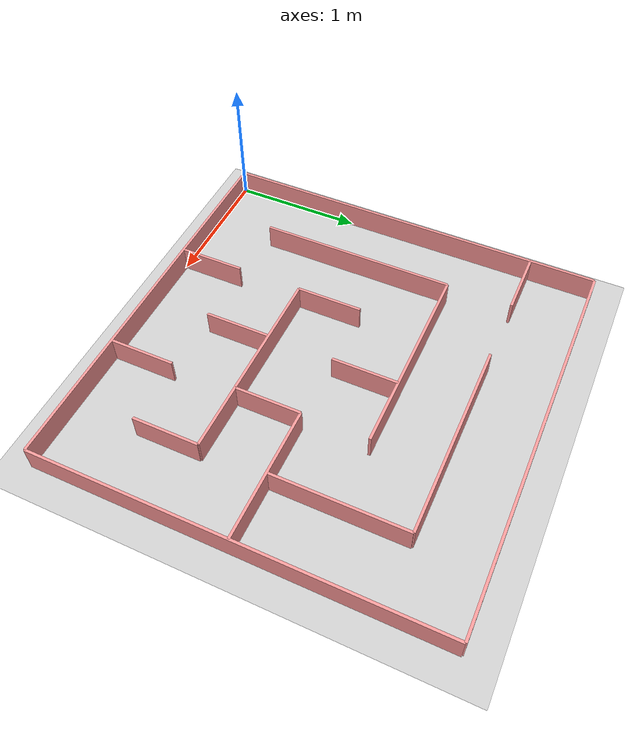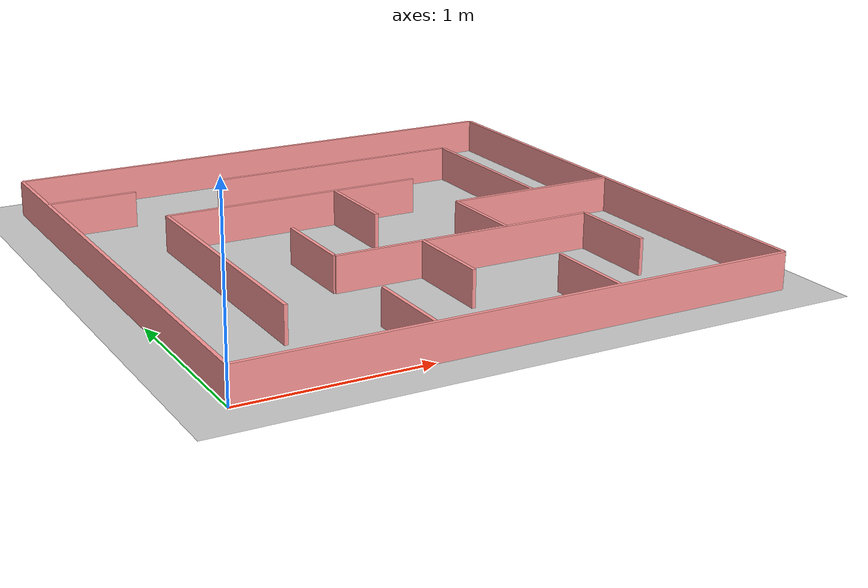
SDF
<?xml version="1.0" ?>
<sdf version="1.6">
  <world name="robot_maze">

    <physics type="ode">
      <real_time_update_rate>1000.0</real_time_update_rate>
      <max_step_size>0.001</max_step_size>
    </physics>

    <plugin
      filename="gz-sim-physics-system"
      name="gz::sim::systems::Physics">
    </plugin>
    <plugin
      filename="gz-sim-user-commands-system"
      name="gz::sim::systems::UserCommands">
    </plugin>
    <plugin
      filename="gz-sim-scene-broadcaster-system"
      name="gz::sim::systems::SceneBroadcaster">
    </plugin>
    <plugin
      filename="gz-sim-sensors-system"
      name="gz::sim::systems::Sensors">
      <render_engine>ogre2</render_engine>
    </plugin>
    <plugin
      filename="gz-sim-imu-system"
      name="gz::sim::systems::Imu">
    </plugin>

    <light name="sun" type="directional">
      <cast_shadows>false</cast_shadows>
      <pose>0 0 10 0 0 0</pose>
      <diffuse>0.8 0.8 0.8 1</diffuse>
      <specular>0.2 0.2 0.2 1</specular>
      <attenuation>
        <range>1000</range>
        <constant>0.9</constant>
        <linear>0.01</linear>
        <quadratic>0.001</quadratic>
      </attenuation>
      <direction>-0.5 0.1 -0.9</direction>
    </light>

    <model name="ground_plane">
      <static>true</static>
      <link name="link">
        <inertial>
          <mass>1.0</mass>
          <inertia><ixx>0.01</ixx><ixy>0.0</ixy><ixz>0.0</ixz><iyy>0.01</iyy><iyz>0.0</iyz><izz>0.01</izz></inertia>
        </inertial>
        <collision name="collision">
          <geometry><plane><normal>0 0 1</normal><size>100 100</size></plane></geometry>
        </collision>
        <visual name="visual">
          <geometry><plane><normal>0 0 1</normal><size>100 100</size></plane></geometry>
          <material><ambient>0.8 0.8 0.8 1</ambient><diffuse>0.8 0.8 0.8 1</diffuse></material>
          <cast_shadows>false</cast_shadows>
        </visual>
      </link>
    </model>

    <model name="wall_H_0_0_6">
      <static>true</static>
      <pose>1.5 0 0.1 0 0 0</pose>
      <link name="link">
        <inertial>
          <mass>1.0</mass>
          <inertia><ixx>0.01</ixx><ixy>0.0</ixy><ixz>0.0</ixz><iyy>0.01</iyy><iyz>0.0</iyz><izz>0.01</izz></inertia>
        </inertial>
        <collision name="collision"><geometry><box><size>3.0 0.02 0.2</size></box></geometry></collision>
        <visual name="visual"><geometry><box><size>3.0 0.02 0.2</size></box></geometry><material><ambient>1.0 0.6 0.6 1</ambient><diffuse>1.0 0.6 0.6 1</diffuse></material><cast_shadows>false</cast_shadows></visual>
      </link>
    </model>

    <model name="wall_H_2_2_5">
      <static>true</static>
      <pose>1.75 1.0 0.1 0 0 0</pose>
      <link name="link">
        <inertial>
          <mass>1.0</mass>
          <inertia><ixx>0.01</ixx><ixy>0.0</ixy><ixz>0.0</ixz><iyy>0.01</iyy><iyz>0.0</iyz><izz>0.01</izz></inertia>
        </inertial>
        <collision name="collision"><geometry><box><size>1.5 0.02 0.2</size></box></geometry></collision>
        <visual name="visual"><geometry><box><size>1.5 0.02 0.2</size></box></geometry><material><ambient>1.0 0.6 0.6 1</ambient><diffuse>1.0 0.6 0.6 1</diffuse></material><cast_shadows>false</cast_shadows></visual>
      </link>
    </model>

    <model name="wall_H_3_4_6">
      <static>true</static>
      <pose>2.5 1.5 0.1 0 0 0</pose>
      <link name="link">
        <inertial>
          <mass>1.0</mass>
          <inertia><ixx>0.01</ixx><ixy>0.0</ixy><ixz>0.0</ixz><iyy>0.01</iyy><iyz>0.0</iyz><izz>0.01</izz></inertia>
        </inertial>
        <collision name="collision"><geometry><box><size>1.0 0.02 0.2</size></box></geometry></collision>
        <visual name="visual"><geometry><box><size>1.0 0.02 0.2</size></box></geometry><material><ambient>1.0 0.6 0.6 1</ambient><diffuse>1.0 0.6 0.6 1</diffuse></material><cast_shadows>false</cast_shadows></visual>
      </link>
    </model>

    <model name="wall_H_4_1_4">
      <static>true</static>
      <pose>1.25 2.0 0.1 0 0 0</pose>
      <link name="link">
        <inertial>
          <mass>1.0</mass>
          <inertia><ixx>0.01</ixx><ixy>0.0</ixy><ixz>0.0</ixz><iyy>0.01</iyy><iyz>0.0</iyz><izz>0.01</izz></inertia>
        </inertial>
        <collision name="collision"><geometry><box><size>1.5 0.02 0.2</size></box></geometry></collision>
        <visual name="visual"><geometry><box><size>1.5 0.02 0.2</size></box></geometry><material><ambient>1.0 0.6 0.6 1</ambient><diffuse>1.0 0.6 0.6 1</diffuse></material><cast_shadows>false</cast_shadows></visual>
      </link>
    </model>

    <model name="wall_H_5_0_1">
      <static>true</static>
      <pose>0.25 2.5 0.1 0 0 0</pose>
      <link name="link">
        <inertial>
          <mass>1.0</mass>
          <inertia><ixx>0.01</ixx><ixy>0.0</ixy><ixz>0.0</ixz><iyy>0.01</iyy><iyz>0.0</iyz><izz>0.01</izz></inertia>
        </inertial>
        <collision name="collision"><geometry><box><size>0.5 0.02 0.2</size></box></geometry></collision>
        <visual name="visual"><geometry><box><size>0.5 0.02 0.2</size></box></geometry><material><ambient>1.0 0.6 0.6 1</ambient><diffuse>1.0 0.6 0.6 1</diffuse></material><cast_shadows>false</cast_shadows></visual>
      </link>
    </model>

    <model name="wall_H_5_2_5">
      <static>true</static>
      <pose>1.75 2.5 0.1 0 0 0</pose>
      <link name="link">
        <inertial>
          <mass>1.0</mass>
          <inertia><ixx>0.01</ixx><ixy>0.0</ixy><ixz>0.0</ixz><iyy>0.01</iyy><iyz>0.0</iyz><izz>0.01</izz></inertia>
        </inertial>
        <collision name="collision"><geometry><box><size>1.5 0.02 0.2</size></box></geometry></collision>
        <visual name="visual"><geometry><box><size>1.5 0.02 0.2</size></box></geometry><material><ambient>1.0 0.6 0.6 1</ambient><diffuse>1.0 0.6 0.6 1</diffuse></material><cast_shadows>false</cast_shadows></visual>
      </link>
    </model>

    <model name="wall_H_6_0_6">
      <static>true</static>
      <pose>1.5 3.0 0.1 0 0 0</pose>
      <link name="link">
        <inertial>
          <mass>1.0</mass>
          <inertia><ixx>0.01</ixx><ixy>0.0</ixy><ixz>0.0</ixz><iyy>0.01</iyy><iyz>0.0</iyz><izz>0.01</izz></inertia>
        </inertial>
        <collision name="collision"><geometry><box><size>3.0 0.02 0.2</size></box></geometry></collision>
        <visual name="visual"><geometry><box><size>3.0 0.02 0.2</size></box></geometry><material><ambient>1.0 0.6 0.6 1</ambient><diffuse>1.0 0.6 0.6 1</diffuse></material><cast_shadows>false</cast_shadows></visual>
      </link>
    </model>

    <model name="wall_V_0_0_6">
      <static>true</static>
      <pose>0 1.5 0.1 0 0 0</pose>
      <link name="link">
        <inertial>
          <mass>1.0</mass>
          <inertia><ixx>0.01</ixx><ixy>0.0</ixy><ixz>0.0</ixz><iyy>0.01</iyy><iyz>0.0</iyz><izz>0.01</izz></inertia>
        </inertial>
        <collision name="collision"><geometry><box><size>0.02 3.0 0.2</size></box></geometry></collision>
        <visual name="visual"><geometry><box><size>0.02 3.0 0.2</size></box></geometry><material><ambient>1.0 0.6 0.6 1</ambient><diffuse>1.0 0.6 0.6 1</diffuse></material><cast_shadows>false</cast_shadows></visual>
      </link>
    </model>

    <model name="wall_V_1_1_4">
      <static>true</static>
      <pose>0.5 1.25 0.1 0 0 0</pose>
      <link name="link">
        <inertial>
          <mass>1.0</mass>
          <inertia><ixx>0.01</ixx><ixy>0.0</ixy><ixz>0.0</ixz><iyy>0.01</iyy><iyz>0.0</iyz><izz>0.01</izz></inertia>
        </inertial>
        <collision name="collision"><geometry><box><size>0.02 1.5 0.2</size></box></geometry></collision>
        <visual name="visual"><geometry><box><size>0.02 1.5 0.2</size></box></geometry><material><ambient>1.0 0.6 0.6 1</ambient><diffuse>1.0 0.6 0.6 1</diffuse></material><cast_shadows>false</cast_shadows></visual>
      </link>
    </model>

    <model name="wall_V_2_0_1">
      <static>true</static>
      <pose>1.0 0.25 0.1 0 0 0</pose>
      <link name="link">
        <inertial>
          <mass>1.0</mass>
          <inertia><ixx>0.01</ixx><ixy>0.0</ixy><ixz>0.0</ixz><iyy>0.01</iyy><iyz>0.0</iyz><izz>0.01</izz></inertia>
        </inertial>
        <collision name="collision"><geometry><box><size>0.02 0.5 0.2</size></box></geometry></collision>
        <visual name="visual"><geometry><box><size>0.02 0.5 0.2</size></box></geometry><material><ambient>1.0 0.6 0.6 1</ambient><diffuse>1.0 0.6 0.6 1</diffuse></material><cast_shadows>false</cast_shadows></visual>
      </link>
    </model>

    <model name="wall_V_2_2_3">
      <static>true</static>
      <pose>1.0 1.25 0.1 0 0 0</pose>
      <link name="link">
        <inertial>
          <mass>1.0</mass>
          <inertia><ixx>0.01</ixx><ixy>0.0</ixy><ixz>0.0</ixz><iyy>0.01</iyy><iyz>0.0</iyz><izz>0.01</izz></inertia>
        </inertial>
        <collision name="collision"><geometry><box><size>0.02 0.5 0.2</size></box></geometry></collision>
        <visual name="visual"><geometry><box><size>0.02 0.5 0.2</size></box></geometry><material><ambient>1.0 0.6 0.6 1</ambient><diffuse>1.0 0.6 0.6 1</diffuse></material><cast_shadows>false</cast_shadows></visual>
      </link>
    </model>

    <model name="wall_V_3_1_2">
      <static>true</static>
      <pose>1.5 0.75 0.1 0 0 0</pose>
      <link name="link">
        <inertial>
          <mass>1.0</mass>
          <inertia><ixx>0.01</ixx><ixy>0.0</ixy><ixz>0.0</ixz><iyy>0.01</iyy><iyz>0.0</iyz><izz>0.01</izz></inertia>
        </inertial>
        <collision name="collision"><geometry><box><size>0.02 0.5 0.2</size></box></geometry></collision>
        <visual name="visual"><geometry><box><size>0.02 0.5 0.2</size></box></geometry><material><ambient>1.0 0.6 0.6 1</ambient><diffuse>1.0 0.6 0.6 1</diffuse></material><cast_shadows>false</cast_shadows></visual>
      </link>
    </model>

    <model name="wall_V_3_3_4">
      <static>true</static>
      <pose>1.5 1.75 0.1 0 0 0</pose>
      <link name="link">
        <inertial>
          <mass>1.0</mass>
          <inertia><ixx>0.01</ixx><ixy>0.0</ixy><ixz>0.0</ixz><iyy>0.01</iyy><iyz>0.0</iyz><izz>0.01</izz></inertia>
        </inertial>
        <collision name="collision"><geometry><box><size>0.02 0.5 0.2</size></box></geometry></collision>
        <visual name="visual"><geometry><box><size>0.02 0.5 0.2</size></box></geometry><material><ambient>1.0 0.6 0.6 1</ambient><diffuse>1.0 0.6 0.6 1</diffuse></material><cast_shadows>false</cast_shadows></visual>
      </link>
    </model>

    <model name="wall_V_4_0_1">
      <static>true</static>
      <pose>2.0 0.25 0.1 0 0 0</pose>
      <link name="link">
        <inertial>
          <mass>1.0</mass>
          <inertia><ixx>0.01</ixx><ixy>0.0</ixy><ixz>0.0</ixz><iyy>0.01</iyy><iyz>0.0</iyz><izz>0.01</izz></inertia>
        </inertial>
        <collision name="collision"><geometry><box><size>0.02 0.5 0.2</size></box></geometry></collision>
        <visual name="visual"><geometry><box><size>0.02 0.5 0.2</size></box></geometry><material><ambient>1.0 0.6 0.6 1</ambient><diffuse>1.0 0.6 0.6 1</diffuse></material><cast_shadows>false</cast_shadows></visual>
      </link>
    </model>

    <model name="wall_V_4_2_3">
      <static>true</static>
      <pose>2.0 1.25 0.1 0 0 0</pose>
      <link name="link">
        <inertial>
          <mass>1.0</mass>
          <inertia><ixx>0.01</ixx><ixy>0.0</ixy><ixz>0.0</ixz><iyy>0.01</iyy><iyz>0.0</iyz><izz>0.01</izz></inertia>
        </inertial>
        <collision name="collision"><geometry><box><size>0.02 0.5 0.2</size></box></geometry></collision>
        <visual name="visual"><geometry><box><size>0.02 0.5 0.2</size></box></geometry><material><ambient>1.0 0.6 0.6 1</ambient><diffuse>1.0 0.6 0.6 1</diffuse></material><cast_shadows>false</cast_shadows></visual>
      </link>
    </model>

    <model name="wall_V_5_1_2">
      <static>true</static>
      <pose>2.5 0.75 0.1 0 0 0</pose>
      <link name="link">
        <inertial>
          <mass>1.0</mass>
          <inertia><ixx>0.01</ixx><ixy>0.0</ixy><ixz>0.0</ixz><iyy>0.01</iyy><iyz>0.0</iyz><izz>0.01</izz></inertia>
        </inertial>
        <collision name="collision"><geometry><box><size>0.02 0.5 0.2</size></box></geometry></collision>
        <visual name="visual"><geometry><box><size>0.02 0.5 0.2</size></box></geometry><material><ambient>1.0 0.6 0.6 1</ambient><diffuse>1.0 0.6 0.6 1</diffuse></material><cast_shadows>false</cast_shadows></visual>
      </link>
    </model>

    <model name="wall_V_5_3_5">
      <static>true</static>
      <pose>2.5 2.0 0.1 0 0 0</pose>
      <link name="link">
        <inertial>
          <mass>1.0</mass>
          <inertia><ixx>0.01</ixx><ixy>0.0</ixy><ixz>0.0</ixz><iyy>0.01</iyy><iyz>0.0</iyz><izz>0.01</izz></inertia>
        </inertial>
        <collision name="collision"><geometry><box><size>0.02 1.0 0.2</size></box></geometry></collision>
        <visual name="visual"><geometry><box><size>0.02 1.0 0.2</size></box></geometry><material><ambient>1.0 0.6 0.6 1</ambient><diffuse>1.0 0.6 0.6 1</diffuse></material><cast_shadows>false</cast_shadows></visual>
      </link>
    </model>

    <model name="wall_V_6_0_6">
      <static>true</static>
      <pose>3.0 1.5 0.1 0 0 0</pose>
      <link name="link">
        <inertial>
          <mass>1.0</mass>
          <inertia><ixx>0.01</ixx><ixy>0.0</ixy><ixz>0.0</ixz><iyy>0.01</iyy><iyz>0.0</iyz><izz>0.01</izz></inertia>
        </inertial>
        <collision name="collision"><geometry><box><size>0.02 3.0 0.2</size></box></geometry></collision>
        <visual name="visual"><geometry><box><size>0.02 3.0 0.2</size></box></geometry><material><ambient>1.0 0.6 0.6 1</ambient><diffuse>1.0 0.6 0.6 1</diffuse></material><cast_shadows>false</cast_shadows></visual>
      </link>
    </model>

  </world>
</sdf>
